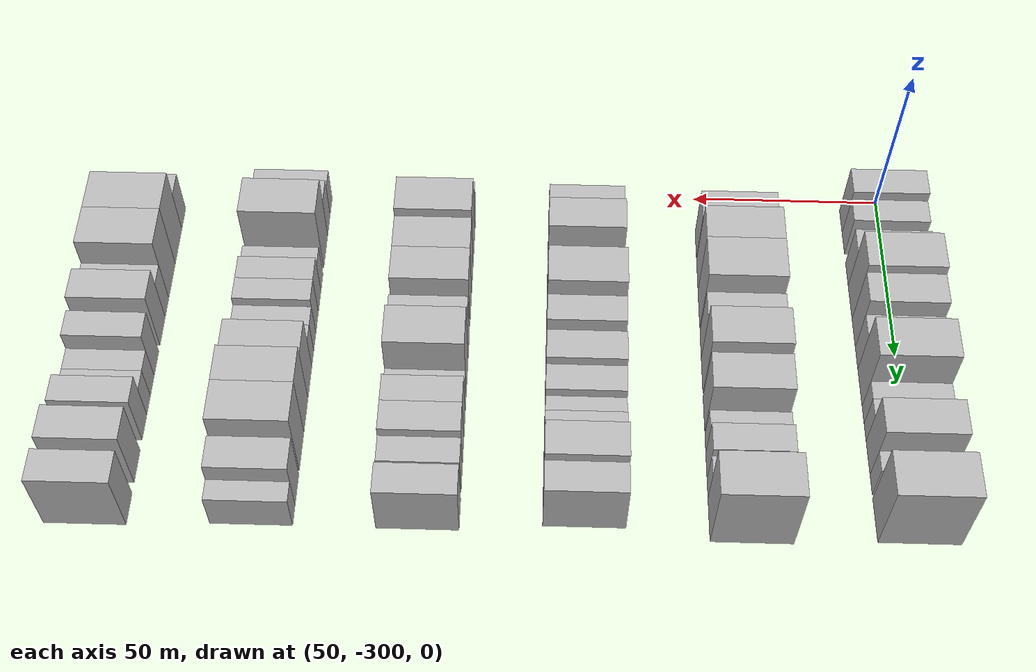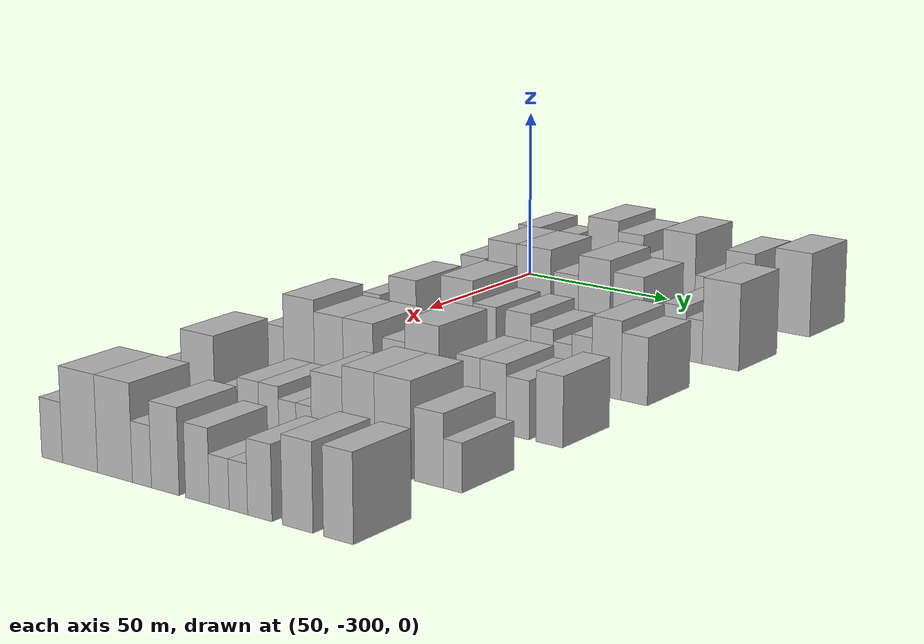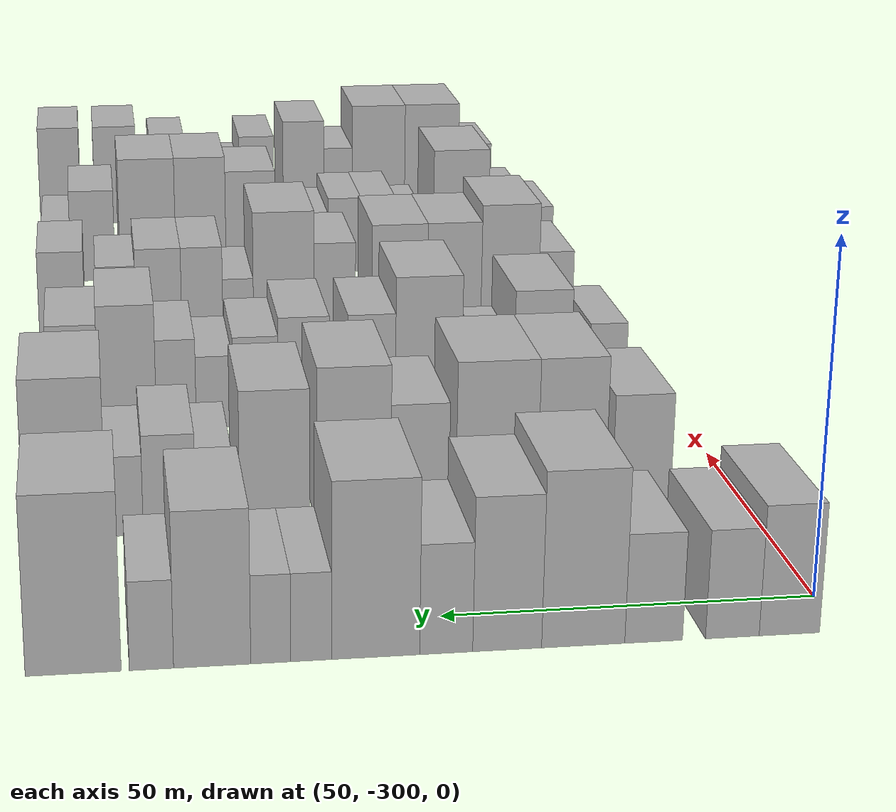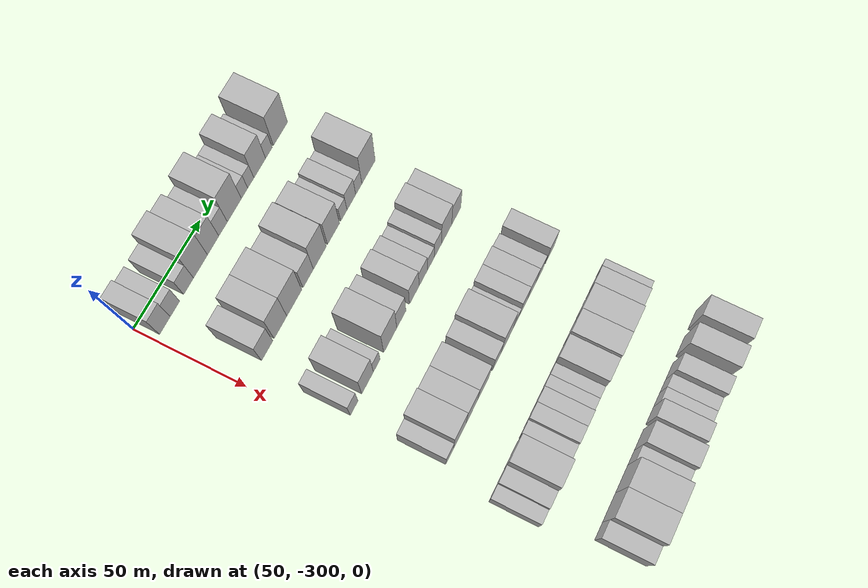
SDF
<sdf version="1.6">
 <world name="default">
  <model name="building_35">
   <static>1</static>
   <pose>50.0000 -293.3137 0 0.000000 0.000000 0.000000</pose>
   <link name="link">
    <pose>0 0 9.00 0 0 0</pose>
    <collision name="collision"><geometry><box><size>20.0000 7.9395 18.0000</size></box></geometry></collision>
    <visual name="visual">
     <cast_shadows>0</cast_shadows>
     <geometry><box><size>20.0000 7.9395 18.0000</size></box></geometry>
     <material>
      <script>
       <uri>model://HANNAS_wall/materials/scripts</uri>
       <uri>model://HANNAS_wall/materials/textures</uri>
       <name>vrc/HANNAS_wall</name>
      </script>
     </material>
    </visual>
   </link>
  </model>
  <model name="building_36">
   <static>1</static>
   <pose>50.0000 -285.8344 0 0.000000 0.000000 0.000000</pose>
   <link name="link">
    <pose>0 0 7.50 0 0 0</pose>
    <collision name="collision"><geometry><box><size>20.0000 7.0191 15.0000</size></box></geometry></collision>
    <visual name="visual">
     <cast_shadows>0</cast_shadows>
     <geometry><box><size>20.0000 7.0191 15.0000</size></box></geometry>
     <material>
      <script>
       <uri>model://HANNAS_wall/materials/scripts</uri>
       <uri>model://HANNAS_wall/materials/textures</uri>
       <name>vrc/HANNAS_wall</name>
      </script>
     </material>
    </visual>
   </link>
  </model>
  <model name="building_37">
   <static>1</static>
   <pose>50.0000 -275.5826 0 0.000000 0.000000 0.000000</pose>
   <link name="link">
    <pose>0 0 7.50 0 0 0</pose>
    <collision name="collision"><geometry><box><size>20.0000 7.4845 15.0000</size></box></geometry></collision>
    <visual name="visual">
     <cast_shadows>0</cast_shadows>
     <geometry><box><size>20.0000 7.4845 15.0000</size></box></geometry>
     <material>
      <script>
       <uri>model://HANNAS_wall/materials/scripts</uri>
       <uri>model://HANNAS_wall/materials/textures</uri>
       <name>vrc/HANNAS_wall</name>
      </script>
     </material>
    </visual>
   </link>
  </model>
  <model name="building_38">
   <static>1</static>
   <pose>50.0000 -266.4854 0 0.000000 0.000000 0.000000</pose>
   <link name="link">
    <pose>0 0 12.00 0 0 0</pose>
    <collision name="collision"><geometry><box><size>20.0000 10.7098 24.0000</size></box></geometry></collision>
    <visual name="visual">
     <cast_shadows>0</cast_shadows>
     <geometry><box><size>20.0000 10.7098 24.0000</size></box></geometry>
     <material>
      <script>
       <uri>model://HANNAS_wall/materials/scripts</uri>
       <uri>model://HANNAS_wall/materials/textures</uri>
       <name>vrc/HANNAS_wall</name>
      </script>
     </material>
    </visual>
   </link>
  </model>
  <model name="building_39">
   <static>1</static>
   <pose>50.0000 -256.7298 0 0.000000 0.000000 0.000000</pose>
   <link name="link">
    <pose>0 0 10.50 0 0 0</pose>
    <collision name="collision"><geometry><box><size>20.0000 8.8016 21.0000</size></box></geometry></collision>
    <visual name="visual">
     <cast_shadows>0</cast_shadows>
     <geometry><box><size>20.0000 8.8016 21.0000</size></box></geometry>
     <material>
      <script>
       <uri>model://HANNAS_wall/materials/scripts</uri>
       <uri>model://HANNAS_wall/materials/textures</uri>
       <name>vrc/HANNAS_wall</name>
      </script>
     </material>
    </visual>
   </link>
  </model>
  <model name="building_40">
   <static>1</static>
   <pose>50.0000 -248.9597 0 0.000000 0.000000 0.000000</pose>
   <link name="link">
    <pose>0 0 7.50 0 0 0</pose>
    <collision name="collision"><geometry><box><size>20.0000 6.7386 15.0000</size></box></geometry></collision>
    <visual name="visual">
     <cast_shadows>0</cast_shadows>
     <geometry><box><size>20.0000 6.7386 15.0000</size></box></geometry>
     <material>
      <script>
       <uri>model://HANNAS_wall/materials/scripts</uri>
       <uri>model://HANNAS_wall/materials/textures</uri>
       <name>vrc/HANNAS_wall</name>
      </script>
     </material>
    </visual>
   </link>
  </model>
  <model name="building_41">
   <static>1</static>
   <pose>50.0000 -240.0426 0 0.000000 0.000000 0.000000</pose>
   <link name="link">
    <pose>0 0 12.00 0 0 0</pose>
    <collision name="collision"><geometry><box><size>20.0000 11.0955 24.0000</size></box></geometry></collision>
    <visual name="visual">
     <cast_shadows>0</cast_shadows>
     <geometry><box><size>20.0000 11.0955 24.0000</size></box></geometry>
     <material>
      <script>
       <uri>model://HANNAS_wall/materials/scripts</uri>
       <uri>model://HANNAS_wall/materials/textures</uri>
       <name>vrc/HANNAS_wall</name>
      </script>
     </material>
    </visual>
   </link>
  </model>
  <model name="building_42">
   <static>1</static>
   <pose>50.0000 -231.9525 0 0.000000 0.000000 0.000000</pose>
   <link name="link">
    <pose>0 0 6.00 0 0 0</pose>
    <collision name="collision"><geometry><box><size>20.0000 5.0847 12.0000</size></box></geometry></collision>
    <visual name="visual">
     <cast_shadows>0</cast_shadows>
     <geometry><box><size>20.0000 5.0847 12.0000</size></box></geometry>
     <material>
      <script>
       <uri>model://HANNAS_wall/materials/scripts</uri>
       <uri>model://HANNAS_wall/materials/textures</uri>
       <name>vrc/HANNAS_wall</name>
      </script>
     </material>
    </visual>
   </link>
  </model>
  <model name="building_43">
   <static>1</static>
   <pose>50.0000 -226.9144 0 0.000000 0.000000 0.000000</pose>
   <link name="link">
    <pose>0 0 6.00 0 0 0</pose>
    <collision name="collision"><geometry><box><size>20.0000 4.9913 12.0000</size></box></geometry></collision>
    <visual name="visual">
     <cast_shadows>0</cast_shadows>
     <geometry><box><size>20.0000 4.9913 12.0000</size></box></geometry>
     <material>
      <script>
       <uri>model://HANNAS_wall/materials/scripts</uri>
       <uri>model://HANNAS_wall/materials/textures</uri>
       <name>vrc/HANNAS_wall</name>
      </script>
     </material>
    </visual>
   </link>
  </model>
  <model name="building_44">
   <static>1</static>
   <pose>50.0000 -219.6413 0 0.000000 0.000000 0.000000</pose>
   <link name="link">
    <pose>0 0 10.50 0 0 0</pose>
    <collision name="collision"><geometry><box><size>20.0000 9.5550 21.0000</size></box></geometry></collision>
    <visual name="visual">
     <cast_shadows>0</cast_shadows>
     <geometry><box><size>20.0000 9.5550 21.0000</size></box></geometry>
     <material>
      <script>
       <uri>model://HANNAS_wall/materials/scripts</uri>
       <uri>model://HANNAS_wall/materials/textures</uri>
       <name>vrc/HANNAS_wall</name>
      </script>
     </material>
    </visual>
   </link>
  </model>
  <model name="building_45">
   <static>1</static>
   <pose>50.0000 -212.1446 0 0.000000 0.000000 0.000000</pose>
   <link name="link">
    <pose>0 0 6.00 0 0 0</pose>
    <collision name="collision"><geometry><box><size>20.0000 5.4385 12.0000</size></box></geometry></collision>
    <visual name="visual">
     <cast_shadows>0</cast_shadows>
     <geometry><box><size>20.0000 5.4385 12.0000</size></box></geometry>
     <material>
      <script>
       <uri>model://HANNAS_wall/materials/scripts</uri>
       <uri>model://HANNAS_wall/materials/textures</uri>
       <name>vrc/HANNAS_wall</name>
      </script>
     </material>
    </visual>
   </link>
  </model>
  <model name="building_46">
   <static>1</static>
   <pose>50.0000 -202.5630 0 0.000000 0.000000 0.000000</pose>
   <link name="link">
    <pose>0 0 12.00 0 0 0</pose>
    <collision name="collision"><geometry><box><size>20.0000 11.7247 24.0000</size></box></geometry></collision>
    <visual name="visual">
     <cast_shadows>0</cast_shadows>
     <geometry><box><size>20.0000 11.7247 24.0000</size></box></geometry>
     <material>
      <script>
       <uri>model://HANNAS_wall/materials/scripts</uri>
       <uri>model://HANNAS_wall/materials/textures</uri>
       <name>vrc/HANNAS_wall</name>
      </script>
     </material>
    </visual>
   </link>
  </model>
  <model name="building_165">
   <static>1</static>
   <pose>90.0000 -284.2924 0 0.000000 0.000000 0.000000</pose>
   <link name="link">
    <pose>0 0 9.00 0 0 0</pose>
    <collision name="collision"><geometry><box><size>20.0000 8.6915 18.0000</size></box></geometry></collision>
    <visual name="visual">
     <cast_shadows>0</cast_shadows>
     <geometry><box><size>20.0000 8.6915 18.0000</size></box></geometry>
     <material>
      <script>
       <uri>model://HANNAS_wall/materials/scripts</uri>
       <uri>model://HANNAS_wall/materials/textures</uri>
       <name>vrc/HANNAS_wall</name>
      </script>
     </material>
    </visual>
   </link>
  </model>
  <model name="building_166">
   <static>1</static>
   <pose>90.0000 -273.9540 0 0.000000 0.000000 0.000000</pose>
   <link name="link">
    <pose>0 0 12.00 0 0 0</pose>
    <collision name="collision"><geometry><box><size>20.0000 9.9853 24.0000</size></box></geometry></collision>
    <visual name="visual">
     <cast_shadows>0</cast_shadows>
     <geometry><box><size>20.0000 9.9853 24.0000</size></box></geometry>
     <material>
      <script>
       <uri>model://HANNAS_wall/materials/scripts</uri>
       <uri>model://HANNAS_wall/materials/textures</uri>
       <name>vrc/HANNAS_wall</name>
      </script>
     </material>
    </visual>
   </link>
  </model>
  <model name="building_167">
   <static>1</static>
   <pose>90.0000 -263.0146 0 0.000000 0.000000 0.000000</pose>
   <link name="link">
    <pose>0 0 12.00 0 0 0</pose>
    <collision name="collision"><geometry><box><size>20.0000 11.8936 24.0000</size></box></geometry></collision>
    <visual name="visual">
     <cast_shadows>0</cast_shadows>
     <geometry><box><size>20.0000 11.8936 24.0000</size></box></geometry>
     <material>
      <script>
       <uri>model://HANNAS_wall/materials/scripts</uri>
       <uri>model://HANNAS_wall/materials/textures</uri>
       <name>vrc/HANNAS_wall</name>
      </script>
     </material>
    </visual>
   </link>
  </model>
  <model name="building_168">
   <static>1</static>
   <pose>90.0000 -251.8723 0 0.000000 0.000000 0.000000</pose>
   <link name="link">
    <pose>0 0 9.00 0 0 0</pose>
    <collision name="collision"><geometry><box><size>20.0000 8.3909 18.0000</size></box></geometry></collision>
    <visual name="visual">
     <cast_shadows>0</cast_shadows>
     <geometry><box><size>20.0000 8.3909 18.0000</size></box></geometry>
     <material>
      <script>
       <uri>model://HANNAS_wall/materials/scripts</uri>
       <uri>model://HANNAS_wall/materials/textures</uri>
       <name>vrc/HANNAS_wall</name>
      </script>
     </material>
    </visual>
   </link>
  </model>
  <model name="building_169">
   <static>1</static>
   <pose>90.0000 -242.3842 0 0.000000 0.000000 0.000000</pose>
   <link name="link">
    <pose>0 0 12.00 0 0 0</pose>
    <collision name="collision"><geometry><box><size>20.0000 10.5854 24.0000</size></box></geometry></collision>
    <visual name="visual">
     <cast_shadows>0</cast_shadows>
     <geometry><box><size>20.0000 10.5854 24.0000</size></box></geometry>
     <material>
      <script>
       <uri>model://HANNAS_wall/materials/scripts</uri>
       <uri>model://HANNAS_wall/materials/textures</uri>
       <name>vrc/HANNAS_wall</name>
      </script>
     </material>
    </visual>
   </link>
  </model>
  <model name="building_170">
   <static>1</static>
   <pose>90.0000 -231.0860 0 0.000000 0.000000 0.000000</pose>
   <link name="link">
    <pose>0 0 10.50 0 0 0</pose>
    <collision name="collision"><geometry><box><size>20.0000 10.0109 21.0000</size></box></geometry></collision>
    <visual name="visual">
     <cast_shadows>0</cast_shadows>
     <geometry><box><size>20.0000 10.0109 21.0000</size></box></geometry>
     <material>
      <script>
       <uri>model://HANNAS_wall/materials/scripts</uri>
       <uri>model://HANNAS_wall/materials/textures</uri>
       <name>vrc/HANNAS_wall</name>
      </script>
     </material>
    </visual>
   </link>
  </model>
  <model name="building_171">
   <static>1</static>
   <pose>90.0000 -222.4510 0 0.000000 0.000000 0.000000</pose>
   <link name="link">
    <pose>0 0 6.00 0 0 0</pose>
    <collision name="collision"><geometry><box><size>20.0000 5.2591 12.0000</size></box></geometry></collision>
    <visual name="visual">
     <cast_shadows>0</cast_shadows>
     <geometry><box><size>20.0000 5.2591 12.0000</size></box></geometry>
     <material>
      <script>
       <uri>model://HANNAS_wall/materials/scripts</uri>
       <uri>model://HANNAS_wall/materials/textures</uri>
       <name>vrc/HANNAS_wall</name>
      </script>
     </material>
    </visual>
   </link>
  </model>
  <model name="building_172">
   <static>1</static>
   <pose>90.0000 -216.1184 0 0.000000 0.000000 0.000000</pose>
   <link name="link">
    <pose>0 0 7.50 0 0 0</pose>
    <collision name="collision"><geometry><box><size>20.0000 7.4061 15.0000</size></box></geometry></collision>
    <visual name="visual">
     <cast_shadows>0</cast_shadows>
     <geometry><box><size>20.0000 7.4061 15.0000</size></box></geometry>
     <material>
      <script>
       <uri>model://HANNAS_wall/materials/scripts</uri>
       <uri>model://HANNAS_wall/materials/textures</uri>
       <name>vrc/HANNAS_wall</name>
      </script>
     </material>
    </visual>
   </link>
  </model>
  <model name="building_173">
   <static>1</static>
   <pose>90.0000 -209.7845 0 0.000000 0.000000 0.000000</pose>
   <link name="link">
    <pose>0 0 6.00 0 0 0</pose>
    <collision name="collision"><geometry><box><size>20.0000 5.2618 12.0000</size></box></geometry></collision>
    <visual name="visual">
     <cast_shadows>0</cast_shadows>
     <geometry><box><size>20.0000 5.2618 12.0000</size></box></geometry>
     <material>
      <script>
       <uri>model://HANNAS_wall/materials/scripts</uri>
       <uri>model://HANNAS_wall/materials/textures</uri>
       <name>vrc/HANNAS_wall</name>
      </script>
     </material>
    </visual>
   </link>
  </model>
  <model name="building_174">
   <static>1</static>
   <pose>90.0000 -201.4237 0 0.000000 0.000000 0.000000</pose>
   <link name="link">
    <pose>0 0 12.00 0 0 0</pose>
    <collision name="collision"><geometry><box><size>20.0000 11.4596 24.0000</size></box></geometry></collision>
    <visual name="visual">
     <cast_shadows>0</cast_shadows>
     <geometry><box><size>20.0000 11.4596 24.0000</size></box></geometry>
     <material>
      <script>
       <uri>model://HANNAS_wall/materials/scripts</uri>
       <uri>model://HANNAS_wall/materials/textures</uri>
       <name>vrc/HANNAS_wall</name>
      </script>
     </material>
    </visual>
   </link>
  </model>
  <model name="building_306">
   <static>1</static>
   <pose>130.0000 -288.9346 0 0.000000 0.000000 0.000000</pose>
   <link name="link">
    <pose>0 0 7.50 0 0 0</pose>
    <collision name="collision"><geometry><box><size>20.0000 6.1439 15.0000</size></box></geometry></collision>
    <visual name="visual">
     <cast_shadows>0</cast_shadows>
     <geometry><box><size>20.0000 6.1439 15.0000</size></box></geometry>
     <material>
      <script>
       <uri>model://HANNAS_wall/materials/scripts</uri>
       <uri>model://HANNAS_wall/materials/textures</uri>
       <name>vrc/HANNAS_wall</name>
      </script>
     </material>
    </visual>
   </link>
  </model>
  <model name="building_307">
   <static>1</static>
   <pose>130.0000 -278.1703 0 0.000000 0.000000 0.000000</pose>
   <link name="link">
    <pose>0 0 10.50 0 0 0</pose>
    <collision name="collision"><geometry><box><size>20.0000 9.3846 21.0000</size></box></geometry></collision>
    <visual name="visual">
     <cast_shadows>0</cast_shadows>
     <geometry><box><size>20.0000 9.3846 21.0000</size></box></geometry>
     <material>
      <script>
       <uri>model://HANNAS_wall/materials/scripts</uri>
       <uri>model://HANNAS_wall/materials/textures</uri>
       <name>vrc/HANNAS_wall</name>
      </script>
     </material>
    </visual>
   </link>
  </model>
  <model name="building_308">
   <static>1</static>
   <pose>130.0000 -270.7089 0 0.000000 0.000000 0.000000</pose>
   <link name="link">
    <pose>0 0 6.00 0 0 0</pose>
    <collision name="collision"><geometry><box><size>20.0000 5.5382 12.0000</size></box></geometry></collision>
    <visual name="visual">
     <cast_shadows>0</cast_shadows>
     <geometry><box><size>20.0000 5.5382 12.0000</size></box></geometry>
     <material>
      <script>
       <uri>model://HANNAS_wall/materials/scripts</uri>
       <uri>model://HANNAS_wall/materials/textures</uri>
       <name>vrc/HANNAS_wall</name>
      </script>
     </material>
    </visual>
   </link>
  </model>
  <model name="building_309">
   <static>1</static>
   <pose>130.0000 -259.5459 0 0.000000 0.000000 0.000000</pose>
   <link name="link">
    <pose>0 0 12.00 0 0 0</pose>
    <collision name="collision"><geometry><box><size>20.0000 10.7880 24.0000</size></box></geometry></collision>
    <visual name="visual">
     <cast_shadows>0</cast_shadows>
     <geometry><box><size>20.0000 10.7880 24.0000</size></box></geometry>
     <material>
      <script>
       <uri>model://HANNAS_wall/materials/scripts</uri>
       <uri>model://HANNAS_wall/materials/textures</uri>
       <name>vrc/HANNAS_wall</name>
      </script>
     </material>
    </visual>
   </link>
  </model>
  <model name="building_310">
   <static>1</static>
   <pose>130.0000 -250.3165 0 0.000000 0.000000 0.000000</pose>
   <link name="link">
    <pose>0 0 9.00 0 0 0</pose>
    <collision name="collision"><geometry><box><size>20.0000 7.6708 18.0000</size></box></geometry></collision>
    <visual name="visual">
     <cast_shadows>0</cast_shadows>
     <geometry><box><size>20.0000 7.6708 18.0000</size></box></geometry>
     <material>
      <script>
       <uri>model://HANNAS_wall/materials/scripts</uri>
       <uri>model://HANNAS_wall/materials/textures</uri>
       <name>vrc/HANNAS_wall</name>
      </script>
     </material>
    </visual>
   </link>
  </model>
  <model name="building_311">
   <static>1</static>
   <pose>130.0000 -239.3849 0 0.000000 0.000000 0.000000</pose>
   <link name="link">
    <pose>0 0 9.00 0 0 0</pose>
    <collision name="collision"><geometry><box><size>20.0000 8.1924 18.0000</size></box></geometry></collision>
    <visual name="visual">
     <cast_shadows>0</cast_shadows>
     <geometry><box><size>20.0000 8.1924 18.0000</size></box></geometry>
     <material>
      <script>
       <uri>model://HANNAS_wall/materials/scripts</uri>
       <uri>model://HANNAS_wall/materials/textures</uri>
       <name>vrc/HANNAS_wall</name>
      </script>
     </material>
    </visual>
   </link>
  </model>
  <model name="building_312">
   <static>1</static>
   <pose>130.0000 -231.6470 0 0.000000 0.000000 0.000000</pose>
   <link name="link">
    <pose>0 0 7.50 0 0 0</pose>
    <collision name="collision"><geometry><box><size>20.0000 7.2834 15.0000</size></box></geometry></collision>
    <visual name="visual">
     <cast_shadows>0</cast_shadows>
     <geometry><box><size>20.0000 7.2834 15.0000</size></box></geometry>
     <material>
      <script>
       <uri>model://HANNAS_wall/materials/scripts</uri>
       <uri>model://HANNAS_wall/materials/textures</uri>
       <name>vrc/HANNAS_wall</name>
      </script>
     </material>
    </visual>
   </link>
  </model>
  <model name="building_313">
   <static>1</static>
   <pose>130.0000 -225.0626 0 0.000000 0.000000 0.000000</pose>
   <link name="link">
    <pose>0 0 6.00 0 0 0</pose>
    <collision name="collision"><geometry><box><size>20.0000 5.8854 12.0000</size></box></geometry></collision>
    <visual name="visual">
     <cast_shadows>0</cast_shadows>
     <geometry><box><size>20.0000 5.8854 12.0000</size></box></geometry>
     <material>
      <script>
       <uri>model://HANNAS_wall/materials/scripts</uri>
       <uri>model://HANNAS_wall/materials/textures</uri>
       <name>vrc/HANNAS_wall</name>
      </script>
     </material>
    </visual>
   </link>
  </model>
  <model name="building_314">
   <static>1</static>
   <pose>130.0000 -218.9593 0 0.000000 0.000000 0.000000</pose>
   <link name="link">
    <pose>0 0 7.50 0 0 0</pose>
    <collision name="collision"><geometry><box><size>20.0000 6.3211 15.0000</size></box></geometry></collision>
    <visual name="visual">
     <cast_shadows>0</cast_shadows>
     <geometry><box><size>20.0000 6.3211 15.0000</size></box></geometry>
     <material>
      <script>
       <uri>model://HANNAS_wall/materials/scripts</uri>
       <uri>model://HANNAS_wall/materials/textures</uri>
       <name>vrc/HANNAS_wall</name>
      </script>
     </material>
    </visual>
   </link>
  </model>
  <model name="building_315">
   <static>1</static>
   <pose>130.0000 -211.2364 0 0.000000 0.000000 0.000000</pose>
   <link name="link">
    <pose>0 0 10.50 0 0 0</pose>
    <collision name="collision"><geometry><box><size>20.0000 9.1247 21.0000</size></box></geometry></collision>
    <visual name="visual">
     <cast_shadows>0</cast_shadows>
     <geometry><box><size>20.0000 9.1247 21.0000</size></box></geometry>
     <material>
      <script>
       <uri>model://HANNAS_wall/materials/scripts</uri>
       <uri>model://HANNAS_wall/materials/textures</uri>
       <name>vrc/HANNAS_wall</name>
      </script>
     </material>
    </visual>
   </link>
  </model>
  <model name="building_316">
   <static>1</static>
   <pose>130.0000 -202.6644 0 0.000000 0.000000 0.000000</pose>
   <link name="link">
    <pose>0 0 9.00 0 0 0</pose>
    <collision name="collision"><geometry><box><size>20.0000 8.0192 18.0000</size></box></geometry></collision>
    <visual name="visual">
     <cast_shadows>0</cast_shadows>
     <geometry><box><size>20.0000 8.0192 18.0000</size></box></geometry>
     <material>
      <script>
       <uri>model://HANNAS_wall/materials/scripts</uri>
       <uri>model://HANNAS_wall/materials/textures</uri>
       <name>vrc/HANNAS_wall</name>
      </script>
     </material>
    </visual>
   </link>
  </model>
  <model name="building_445">
   <static>1</static>
   <pose>170.0000 -289.1580 0 0.000000 0.000000 0.000000</pose>
   <link name="link">
    <pose>0 0 7.50 0 0 0</pose>
    <collision name="collision"><geometry><box><size>20.0000 6.2905 15.0000</size></box></geometry></collision>
    <visual name="visual">
     <cast_shadows>0</cast_shadows>
     <geometry><box><size>20.0000 6.2905 15.0000</size></box></geometry>
     <material>
      <script>
       <uri>model://HANNAS_wall/materials/scripts</uri>
       <uri>model://HANNAS_wall/materials/textures</uri>
       <name>vrc/HANNAS_wall</name>
      </script>
     </material>
    </visual>
   </link>
  </model>
  <model name="building_446">
   <static>1</static>
   <pose>170.0000 -280.7615 0 0.000000 0.000000 0.000000</pose>
   <link name="link">
    <pose>0 0 12.00 0 0 0</pose>
    <collision name="collision"><geometry><box><size>20.0000 10.5026 24.0000</size></box></geometry></collision>
    <visual name="visual">
     <cast_shadows>0</cast_shadows>
     <geometry><box><size>20.0000 10.5026 24.0000</size></box></geometry>
     <material>
      <script>
       <uri>model://HANNAS_wall/materials/scripts</uri>
       <uri>model://HANNAS_wall/materials/textures</uri>
       <name>vrc/HANNAS_wall</name>
      </script>
     </material>
    </visual>
   </link>
  </model>
  <model name="building_447">
   <static>1</static>
   <pose>170.0000 -270.6434 0 0.000000 0.000000 0.000000</pose>
   <link name="link">
    <pose>0 0 10.50 0 0 0</pose>
    <collision name="collision"><geometry><box><size>20.0000 9.7336 21.0000</size></box></geometry></collision>
    <visual name="visual">
     <cast_shadows>0</cast_shadows>
     <geometry><box><size>20.0000 9.7336 21.0000</size></box></geometry>
     <material>
      <script>
       <uri>model://HANNAS_wall/materials/scripts</uri>
       <uri>model://HANNAS_wall/materials/textures</uri>
       <name>vrc/HANNAS_wall</name>
      </script>
     </material>
    </visual>
   </link>
  </model>
  <model name="building_448">
   <static>1</static>
   <pose>170.0000 -260.7798 0 0.000000 0.000000 0.000000</pose>
   <link name="link">
    <pose>0 0 10.50 0 0 0</pose>
    <collision name="collision"><geometry><box><size>20.0000 9.9936 21.0000</size></box></geometry></collision>
    <visual name="visual">
     <cast_shadows>0</cast_shadows>
     <geometry><box><size>20.0000 9.9936 21.0000</size></box></geometry>
     <material>
      <script>
       <uri>model://HANNAS_wall/materials/scripts</uri>
       <uri>model://HANNAS_wall/materials/textures</uri>
       <name>vrc/HANNAS_wall</name>
      </script>
     </material>
    </visual>
   </link>
  </model>
  <model name="building_449">
   <static>1</static>
   <pose>170.0000 -249.1024 0 0.000000 0.000000 0.000000</pose>
   <link name="link">
    <pose>0 0 9.00 0 0 0</pose>
    <collision name="collision"><geometry><box><size>20.0000 7.3612 18.0000</size></box></geometry></collision>
    <visual name="visual">
     <cast_shadows>0</cast_shadows>
     <geometry><box><size>20.0000 7.3612 18.0000</size></box></geometry>
     <material>
      <script>
       <uri>model://HANNAS_wall/materials/scripts</uri>
       <uri>model://HANNAS_wall/materials/textures</uri>
       <name>vrc/HANNAS_wall</name>
      </script>
     </material>
    </visual>
   </link>
  </model>
  <model name="building_450">
   <static>1</static>
   <pose>170.0000 -239.9937 0 0.000000 0.000000 0.000000</pose>
   <link name="link">
    <pose>0 0 12.00 0 0 0</pose>
    <collision name="collision"><geometry><box><size>20.0000 10.8562 24.0000</size></box></geometry></collision>
    <visual name="visual">
     <cast_shadows>0</cast_shadows>
     <geometry><box><size>20.0000 10.8562 24.0000</size></box></geometry>
     <material>
      <script>
       <uri>model://HANNAS_wall/materials/scripts</uri>
       <uri>model://HANNAS_wall/materials/textures</uri>
       <name>vrc/HANNAS_wall</name>
      </script>
     </material>
    </visual>
   </link>
  </model>
  <model name="building_451">
   <static>1</static>
   <pose>170.0000 -231.8443 0 0.000000 0.000000 0.000000</pose>
   <link name="link">
    <pose>0 0 6.00 0 0 0</pose>
    <collision name="collision"><geometry><box><size>20.0000 5.4425 12.0000</size></box></geometry></collision>
    <visual name="visual">
     <cast_shadows>0</cast_shadows>
     <geometry><box><size>20.0000 5.4425 12.0000</size></box></geometry>
     <material>
      <script>
       <uri>model://HANNAS_wall/materials/scripts</uri>
       <uri>model://HANNAS_wall/materials/textures</uri>
       <name>vrc/HANNAS_wall</name>
      </script>
     </material>
    </visual>
   </link>
  </model>
  <model name="building_452">
   <static>1</static>
   <pose>170.0000 -225.4843 0 0.000000 0.000000 0.000000</pose>
   <link name="link">
    <pose>0 0 9.00 0 0 0</pose>
    <collision name="collision"><geometry><box><size>20.0000 7.2774 18.0000</size></box></geometry></collision>
    <visual name="visual">
     <cast_shadows>0</cast_shadows>
     <geometry><box><size>20.0000 7.2774 18.0000</size></box></geometry>
     <material>
      <script>
       <uri>model://HANNAS_wall/materials/scripts</uri>
       <uri>model://HANNAS_wall/materials/textures</uri>
       <name>vrc/HANNAS_wall</name>
      </script>
     </material>
    </visual>
   </link>
  </model>
  <model name="building_453">
   <static>1</static>
   <pose>170.0000 -217.8162 0 0.000000 0.000000 0.000000</pose>
   <link name="link">
    <pose>0 0 9.00 0 0 0</pose>
    <collision name="collision"><geometry><box><size>20.0000 8.0588 18.0000</size></box></geometry></collision>
    <visual name="visual">
     <cast_shadows>0</cast_shadows>
     <geometry><box><size>20.0000 8.0588 18.0000</size></box></geometry>
     <material>
      <script>
       <uri>model://HANNAS_wall/materials/scripts</uri>
       <uri>model://HANNAS_wall/materials/textures</uri>
       <name>vrc/HANNAS_wall</name>
      </script>
     </material>
    </visual>
   </link>
  </model>
  <model name="building_454">
   <static>1</static>
   <pose>170.0000 -210.3371 0 0.000000 0.000000 0.000000</pose>
   <link name="link">
    <pose>0 0 7.50 0 0 0</pose>
    <collision name="collision"><geometry><box><size>20.0000 6.8994 15.0000</size></box></geometry></collision>
    <visual name="visual">
     <cast_shadows>0</cast_shadows>
     <geometry><box><size>20.0000 6.8994 15.0000</size></box></geometry>
     <material>
      <script>
       <uri>model://HANNAS_wall/materials/scripts</uri>
       <uri>model://HANNAS_wall/materials/textures</uri>
       <name>vrc/HANNAS_wall</name>
      </script>
     </material>
    </visual>
   </link>
  </model>
  <model name="building_455">
   <static>1</static>
   <pose>170.0000 -200.8837 0 0.000000 0.000000 0.000000</pose>
   <link name="link">
    <pose>0 0 9.00 0 0 0</pose>
    <collision name="collision"><geometry><box><size>20.0000 8.0074 18.0000</size></box></geometry></collision>
    <visual name="visual">
     <cast_shadows>0</cast_shadows>
     <geometry><box><size>20.0000 8.0074 18.0000</size></box></geometry>
     <material>
      <script>
       <uri>model://HANNAS_wall/materials/scripts</uri>
       <uri>model://HANNAS_wall/materials/textures</uri>
       <name>vrc/HANNAS_wall</name>
      </script>
     </material>
    </visual>
   </link>
  </model>
  <model name="building_580">
   <static>1</static>
   <pose>210.0000 -294.3490 0 0.000000 0.000000 0.000000</pose>
   <link name="link">
    <pose>0 0 6.00 0 0 0</pose>
    <collision name="collision"><geometry><box><size>20.0000 5.9332 12.0000</size></box></geometry></collision>
    <visual name="visual">
     <cast_shadows>0</cast_shadows>
     <geometry><box><size>20.0000 5.9332 12.0000</size></box></geometry>
     <material>
      <script>
       <uri>model://HANNAS_wall/materials/scripts</uri>
       <uri>model://HANNAS_wall/materials/textures</uri>
       <name>vrc/HANNAS_wall</name>
      </script>
     </material>
    </visual>
   </link>
  </model>
  <model name="building_581">
   <static>1</static>
   <pose>210.0000 -287.8779 0 0.000000 0.000000 0.000000</pose>
   <link name="link">
    <pose>0 0 7.50 0 0 0</pose>
    <collision name="collision"><geometry><box><size>20.0000 7.0091 15.0000</size></box></geometry></collision>
    <visual name="visual">
     <cast_shadows>0</cast_shadows>
     <geometry><box><size>20.0000 7.0091 15.0000</size></box></geometry>
     <material>
      <script>
       <uri>model://HANNAS_wall/materials/scripts</uri>
       <uri>model://HANNAS_wall/materials/textures</uri>
       <name>vrc/HANNAS_wall</name>
      </script>
     </material>
    </visual>
   </link>
  </model>
  <model name="building_582">
   <static>1</static>
   <pose>210.0000 -278.8611 0 0.000000 0.000000 0.000000</pose>
   <link name="link">
    <pose>0 0 12.00 0 0 0</pose>
    <collision name="collision"><geometry><box><size>20.0000 11.0244 24.0000</size></box></geometry></collision>
    <visual name="visual">
     <cast_shadows>0</cast_shadows>
     <geometry><box><size>20.0000 11.0244 24.0000</size></box></geometry>
     <material>
      <script>
       <uri>model://HANNAS_wall/materials/scripts</uri>
       <uri>model://HANNAS_wall/materials/textures</uri>
       <name>vrc/HANNAS_wall</name>
      </script>
     </material>
    </visual>
   </link>
  </model>
  <model name="building_583">
   <static>1</static>
   <pose>210.0000 -268.5384 0 0.000000 0.000000 0.000000</pose>
   <link name="link">
    <pose>0 0 6.00 0 0 0</pose>
    <collision name="collision"><geometry><box><size>20.0000 5.6210 12.0000</size></box></geometry></collision>
    <visual name="visual">
     <cast_shadows>0</cast_shadows>
     <geometry><box><size>20.0000 5.6210 12.0000</size></box></geometry>
     <material>
      <script>
       <uri>model://HANNAS_wall/materials/scripts</uri>
       <uri>model://HANNAS_wall/materials/textures</uri>
       <name>vrc/HANNAS_wall</name>
      </script>
     </material>
    </visual>
   </link>
  </model>
  <model name="building_584">
   <static>1</static>
   <pose>210.0000 -262.3412 0 0.000000 0.000000 0.000000</pose>
   <link name="link">
    <pose>0 0 7.50 0 0 0</pose>
    <collision name="collision"><geometry><box><size>20.0000 6.7735 15.0000</size></box></geometry></collision>
    <visual name="visual">
     <cast_shadows>0</cast_shadows>
     <geometry><box><size>20.0000 6.7735 15.0000</size></box></geometry>
     <material>
      <script>
       <uri>model://HANNAS_wall/materials/scripts</uri>
       <uri>model://HANNAS_wall/materials/textures</uri>
       <name>vrc/HANNAS_wall</name>
      </script>
     </material>
    </visual>
   </link>
  </model>
  <model name="building_585">
   <static>1</static>
   <pose>210.0000 -255.7316 0 0.000000 0.000000 0.000000</pose>
   <link name="link">
    <pose>0 0 7.50 0 0 0</pose>
    <collision name="collision"><geometry><box><size>20.0000 6.4458 15.0000</size></box></geometry></collision>
    <visual name="visual">
     <cast_shadows>0</cast_shadows>
     <geometry><box><size>20.0000 6.4458 15.0000</size></box></geometry>
     <material>
      <script>
       <uri>model://HANNAS_wall/materials/scripts</uri>
       <uri>model://HANNAS_wall/materials/textures</uri>
       <name>vrc/HANNAS_wall</name>
      </script>
     </material>
    </visual>
   </link>
  </model>
  <model name="building_586">
   <static>1</static>
   <pose>210.0000 -249.7387 0 0.000000 0.000000 0.000000</pose>
   <link name="link">
    <pose>0 0 6.00 0 0 0</pose>
    <collision name="collision"><geometry><box><size>20.0000 5.5400 12.0000</size></box></geometry></collision>
    <visual name="visual">
     <cast_shadows>0</cast_shadows>
     <geometry><box><size>20.0000 5.5400 12.0000</size></box></geometry>
     <material>
      <script>
       <uri>model://HANNAS_wall/materials/scripts</uri>
       <uri>model://HANNAS_wall/materials/textures</uri>
       <name>vrc/HANNAS_wall</name>
      </script>
     </material>
    </visual>
   </link>
  </model>
  <model name="building_587">
   <static>1</static>
   <pose>210.0000 -244.5219 0 0.000000 0.000000 0.000000</pose>
   <link name="link">
    <pose>0 0 6.00 0 0 0</pose>
    <collision name="collision"><geometry><box><size>20.0000 4.8936 12.0000</size></box></geometry></collision>
    <visual name="visual">
     <cast_shadows>0</cast_shadows>
     <geometry><box><size>20.0000 4.8936 12.0000</size></box></geometry>
     <material>
      <script>
       <uri>model://HANNAS_wall/materials/scripts</uri>
       <uri>model://HANNAS_wall/materials/textures</uri>
       <name>vrc/HANNAS_wall</name>
      </script>
     </material>
    </visual>
   </link>
  </model>
  <model name="building_588">
   <static>1</static>
   <pose>210.0000 -237.2514 0 0.000000 0.000000 0.000000</pose>
   <link name="link">
    <pose>0 0 10.50 0 0 0</pose>
    <collision name="collision"><geometry><box><size>20.0000 9.6473 21.0000</size></box></geometry></collision>
    <visual name="visual">
     <cast_shadows>0</cast_shadows>
     <geometry><box><size>20.0000 9.6473 21.0000</size></box></geometry>
     <material>
      <script>
       <uri>model://HANNAS_wall/materials/scripts</uri>
       <uri>model://HANNAS_wall/materials/textures</uri>
       <name>vrc/HANNAS_wall</name>
      </script>
     </material>
    </visual>
   </link>
  </model>
  <model name="building_589">
   <static>1</static>
   <pose>210.0000 -227.5210 0 0.000000 0.000000 0.000000</pose>
   <link name="link">
    <pose>0 0 12.00 0 0 0</pose>
    <collision name="collision"><geometry><box><size>20.0000 9.8135 24.0000</size></box></geometry></collision>
    <visual name="visual">
     <cast_shadows>0</cast_shadows>
     <geometry><box><size>20.0000 9.8135 24.0000</size></box></geometry>
     <material>
      <script>
       <uri>model://HANNAS_wall/materials/scripts</uri>
       <uri>model://HANNAS_wall/materials/textures</uri>
       <name>vrc/HANNAS_wall</name>
      </script>
     </material>
    </visual>
   </link>
  </model>
  <model name="building_590">
   <static>1</static>
   <pose>210.0000 -217.2116 0 0.000000 0.000000 0.000000</pose>
   <link name="link">
    <pose>0 0 12.00 0 0 0</pose>
    <collision name="collision"><geometry><box><size>20.0000 10.8054 24.0000</size></box></geometry></collision>
    <visual name="visual">
     <cast_shadows>0</cast_shadows>
     <geometry><box><size>20.0000 10.8054 24.0000</size></box></geometry>
     <material>
      <script>
       <uri>model://HANNAS_wall/materials/scripts</uri>
       <uri>model://HANNAS_wall/materials/textures</uri>
       <name>vrc/HANNAS_wall</name>
      </script>
     </material>
    </visual>
   </link>
  </model>
  <model name="building_591">
   <static>1</static>
   <pose>210.0000 -206.5564 0 0.000000 0.000000 0.000000</pose>
   <link name="link">
    <pose>0 0 9.00 0 0 0</pose>
    <collision name="collision"><geometry><box><size>20.0000 8.5050 18.0000</size></box></geometry></collision>
    <visual name="visual">
     <cast_shadows>0</cast_shadows>
     <geometry><box><size>20.0000 8.5050 18.0000</size></box></geometry>
     <material>
      <script>
       <uri>model://HANNAS_wall/materials/scripts</uri>
       <uri>model://HANNAS_wall/materials/textures</uri>
       <name>vrc/HANNAS_wall</name>
      </script>
     </material>
    </visual>
   </link>
  </model>
  <model name="building_592">
   <static>1</static>
   <pose>210.0000 -199.6069 0 0.000000 0.000000 0.000000</pose>
   <link name="link">
    <pose>0 0 6.00 0 0 0</pose>
    <collision name="collision"><geometry><box><size>20.0000 5.3939 12.0000</size></box></geometry></collision>
    <visual name="visual">
     <cast_shadows>0</cast_shadows>
     <geometry><box><size>20.0000 5.3939 12.0000</size></box></geometry>
     <material>
      <script>
       <uri>model://HANNAS_wall/materials/scripts</uri>
       <uri>model://HANNAS_wall/materials/textures</uri>
       <name>vrc/HANNAS_wall</name>
      </script>
     </material>
    </visual>
   </link>
  </model>
  <model name="building_725">
   <static>1</static>
   <pose>250.0000 -288.8609 0 0.000000 0.000000 0.000000</pose>
   <link name="link">
    <pose>0 0 7.50 0 0 0</pose>
    <collision name="collision"><geometry><box><size>20.0000 7.0701 15.0000</size></box></geometry></collision>
    <visual name="visual">
     <cast_shadows>0</cast_shadows>
     <geometry><box><size>20.0000 7.0701 15.0000</size></box></geometry>
     <material>
      <script>
       <uri>model://HANNAS_wall/materials/scripts</uri>
       <uri>model://HANNAS_wall/materials/textures</uri>
       <name>vrc/HANNAS_wall</name>
      </script>
     </material>
    </visual>
   </link>
  </model>
  <model name="building_726">
   <static>1</static>
   <pose>250.0000 -279.4825 0 0.000000 0.000000 0.000000</pose>
   <link name="link">
    <pose>0 0 12.00 0 0 0</pose>
    <collision name="collision"><geometry><box><size>20.0000 11.6867 24.0000</size></box></geometry></collision>
    <visual name="visual">
     <cast_shadows>0</cast_shadows>
     <geometry><box><size>20.0000 11.6867 24.0000</size></box></geometry>
     <material>
      <script>
       <uri>model://HANNAS_wall/materials/scripts</uri>
       <uri>model://HANNAS_wall/materials/textures</uri>
       <name>vrc/HANNAS_wall</name>
      </script>
     </material>
    </visual>
   </link>
  </model>
  <model name="building_727">
   <static>1</static>
   <pose>250.0000 -267.9521 0 0.000000 0.000000 0.000000</pose>
   <link name="link">
    <pose>0 0 12.00 0 0 0</pose>
    <collision name="collision"><geometry><box><size>20.0000 11.3741 24.0000</size></box></geometry></collision>
    <visual name="visual">
     <cast_shadows>0</cast_shadows>
     <geometry><box><size>20.0000 11.3741 24.0000</size></box></geometry>
     <material>
      <script>
       <uri>model://HANNAS_wall/materials/scripts</uri>
       <uri>model://HANNAS_wall/materials/textures</uri>
       <name>vrc/HANNAS_wall</name>
      </script>
     </material>
    </visual>
   </link>
  </model>
  <model name="building_728">
   <static>1</static>
   <pose>250.0000 -259.2168 0 0.000000 0.000000 0.000000</pose>
   <link name="link">
    <pose>0 0 7.50 0 0 0</pose>
    <collision name="collision"><geometry><box><size>20.0000 6.0966 15.0000</size></box></geometry></collision>
    <visual name="visual">
     <cast_shadows>0</cast_shadows>
     <geometry><box><size>20.0000 6.0966 15.0000</size></box></geometry>
     <material>
      <script>
       <uri>model://HANNAS_wall/materials/scripts</uri>
       <uri>model://HANNAS_wall/materials/textures</uri>
       <name>vrc/HANNAS_wall</name>
      </script>
     </material>
    </visual>
   </link>
  </model>
  <model name="building_729">
   <static>1</static>
   <pose>250.0000 -251.7960 0 0.000000 0.000000 0.000000</pose>
   <link name="link">
    <pose>0 0 10.50 0 0 0</pose>
    <collision name="collision"><geometry><box><size>20.0000 8.7449 21.0000</size></box></geometry></collision>
    <visual name="visual">
     <cast_shadows>0</cast_shadows>
     <geometry><box><size>20.0000 8.7449 21.0000</size></box></geometry>
     <material>
      <script>
       <uri>model://HANNAS_wall/materials/scripts</uri>
       <uri>model://HANNAS_wall/materials/textures</uri>
       <name>vrc/HANNAS_wall</name>
      </script>
     </material>
    </visual>
   </link>
  </model>
  <model name="building_730">
   <static>1</static>
   <pose>250.0000 -241.7400 0 0.000000 0.000000 0.000000</pose>
   <link name="link">
    <pose>0 0 9.00 0 0 0</pose>
    <collision name="collision"><geometry><box><size>20.0000 7.3671 18.0000</size></box></geometry></collision>
    <visual name="visual">
     <cast_shadows>0</cast_shadows>
     <geometry><box><size>20.0000 7.3671 18.0000</size></box></geometry>
     <material>
      <script>
       <uri>model://HANNAS_wall/materials/scripts</uri>
       <uri>model://HANNAS_wall/materials/textures</uri>
       <name>vrc/HANNAS_wall</name>
      </script>
     </material>
    </visual>
   </link>
  </model>
  <model name="building_731">
   <static>1</static>
   <pose>250.0000 -235.0587 0 0.000000 0.000000 0.000000</pose>
   <link name="link">
    <pose>0 0 6.00 0 0 0</pose>
    <collision name="collision"><geometry><box><size>20.0000 5.9955 12.0000</size></box></geometry></collision>
    <visual name="visual">
     <cast_shadows>0</cast_shadows>
     <geometry><box><size>20.0000 5.9955 12.0000</size></box></geometry>
     <material>
      <script>
       <uri>model://HANNAS_wall/materials/scripts</uri>
       <uri>model://HANNAS_wall/materials/textures</uri>
       <name>vrc/HANNAS_wall</name>
      </script>
     </material>
    </visual>
   </link>
  </model>
  <model name="building_732">
   <static>1</static>
   <pose>250.0000 -229.2849 0 0.000000 0.000000 0.000000</pose>
   <link name="link">
    <pose>0 0 6.00 0 0 0</pose>
    <collision name="collision"><geometry><box><size>20.0000 5.5520 12.0000</size></box></geometry></collision>
    <visual name="visual">
     <cast_shadows>0</cast_shadows>
     <geometry><box><size>20.0000 5.5520 12.0000</size></box></geometry>
     <material>
      <script>
       <uri>model://HANNAS_wall/materials/scripts</uri>
       <uri>model://HANNAS_wall/materials/textures</uri>
       <name>vrc/HANNAS_wall</name>
      </script>
     </material>
    </visual>
   </link>
  </model>
  <model name="building_733">
   <static>1</static>
   <pose>250.0000 -222.8773 0 0.000000 0.000000 0.000000</pose>
   <link name="link">
    <pose>0 0 9.00 0 0 0</pose>
    <collision name="collision"><geometry><box><size>20.0000 7.2632 18.0000</size></box></geometry></collision>
    <visual name="visual">
     <cast_shadows>0</cast_shadows>
     <geometry><box><size>20.0000 7.2632 18.0000</size></box></geometry>
     <material>
      <script>
       <uri>model://HANNAS_wall/materials/scripts</uri>
       <uri>model://HANNAS_wall/materials/textures</uri>
       <name>vrc/HANNAS_wall</name>
      </script>
     </material>
    </visual>
   </link>
  </model>
  <model name="building_734">
   <static>1</static>
   <pose>250.0000 -211.7966 0 0.000000 0.000000 0.000000</pose>
   <link name="link">
    <pose>0 0 10.50 0 0 0</pose>
    <collision name="collision"><geometry><box><size>20.0000 8.8980 21.0000</size></box></geometry></collision>
    <visual name="visual">
     <cast_shadows>0</cast_shadows>
     <geometry><box><size>20.0000 8.8980 21.0000</size></box></geometry>
     <material>
      <script>
       <uri>model://HANNAS_wall/materials/scripts</uri>
       <uri>model://HANNAS_wall/materials/textures</uri>
       <name>vrc/HANNAS_wall</name>
      </script>
     </material>
    </visual>
   </link>
  </model>
  <model name="building_735">
   <static>1</static>
   <pose>250.0000 -200.1213 0 0.000000 0.000000 0.000000</pose>
   <link name="link">
    <pose>0 0 10.50 0 0 0</pose>
    <collision name="collision"><geometry><box><size>20.0000 8.4526 21.0000</size></box></geometry></collision>
    <visual name="visual">
     <cast_shadows>0</cast_shadows>
     <geometry><box><size>20.0000 8.4526 21.0000</size></box></geometry>
     <material>
      <script>
       <uri>model://HANNAS_wall/materials/scripts</uri>
       <uri>model://HANNAS_wall/materials/textures</uri>
       <name>vrc/HANNAS_wall</name>
      </script>
     </material>
    </visual>
   </link>
  </model>
 </world>
</sdf>
